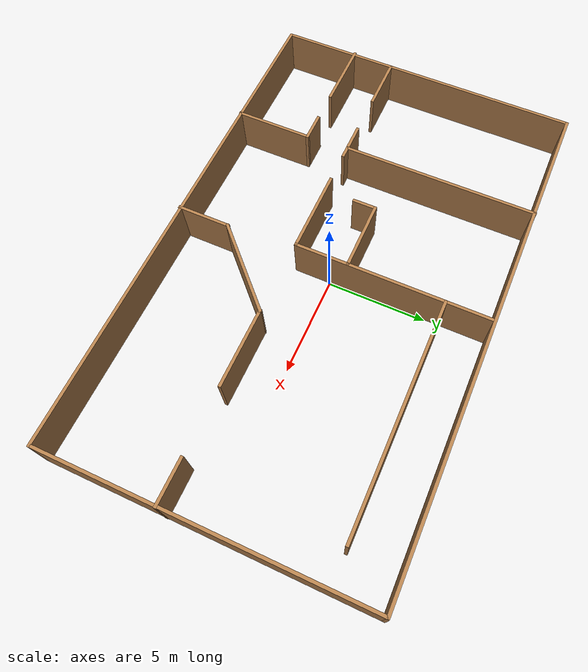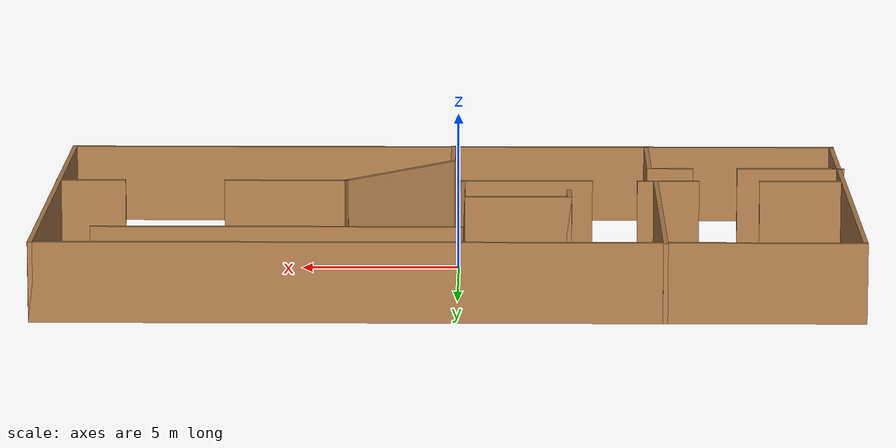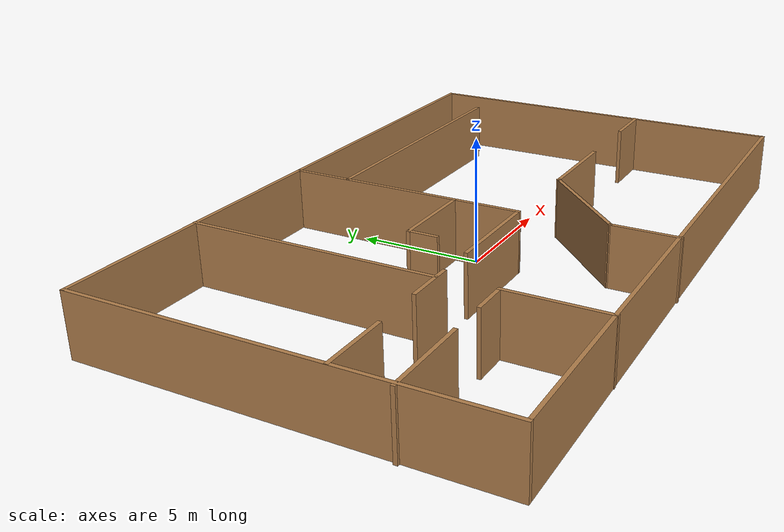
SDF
<?xml version='1.0'?>
<sdf version='1.7'>
  <model name='environment_model'>
    <pose>0.237927 0.116467 0 0 -0 0</pose>
    <link name='Wall_107'>
      <collision name='Wall_107_Collision'>
        <geometry>
          <box>
            <size>16 0.15 2.5</size>
          </box>
        </geometry>
        <pose>0 0 1.25 0 -0 0</pose>
      </collision>
      <visual name='Wall_107_Visual'>
        <pose>0 0 1.25 0 -0 0</pose>
        <geometry>
          <box>
            <size>16 0.15 2.5</size>
          </box>
        </geometry>
        <material>
          <script>
            <uri>file://media/materials/scripts/gazebo.material</uri>
            <name>Gazebo/Wood</name>
          </script>
          <ambient>1 1 1 1</ambient>
        </material>
        <meta>
          <layer>0</layer>
        </meta>
      </visual>
      <pose>-12.6349 0.013322 0 0 -0 1.5708</pose>
    </link>
    <link name='Wall_108'>
      <collision name='Wall_108_Collision'>
        <geometry>
          <box>
            <size>25.5 0.15 2.5</size>
          </box>
        </geometry>
        <pose>0 0 1.25 0 -0 0</pose>
      </collision>
      <visual name='Wall_108_Visual'>
        <pose>0 0 1.25 0 -0 0</pose>
        <geometry>
          <box>
            <size>25.5 0.15 2.5</size>
          </box>
        </geometry>
        <material>
          <script>
            <uri>file://media/materials/scripts/gazebo.material</uri>
            <name>Gazebo/Wood</name>
          </script>
          <ambient>1 1 1 1</ambient>
        </material>
        <meta>
          <layer>0</layer>
        </meta>
      </visual>
      <pose>0.040146 7.93832 0 0 -0 0</pose>
    </link>
    <link name='Wall_109'>
      <collision name='Wall_109_Collision'>
        <geometry>
          <box>
            <size>16 0.15 2.5</size>
          </box>
        </geometry>
        <pose>0 0 1.25 0 -0 0</pose>
      </collision>
      <visual name='Wall_109_Visual'>
        <pose>0 0 1.25 0 -0 0</pose>
        <geometry>
          <box>
            <size>16 0.15 2.5</size>
          </box>
        </geometry>
        <material>
          <script>
            <uri>file://media/materials/scripts/gazebo.material</uri>
            <name>Gazebo/Wood</name>
          </script>
          <ambient>1 1 1 1</ambient>
        </material>
        <meta>
          <layer>0</layer>
        </meta>
      </visual>
      <pose>12.7151 0.013322 0 0 -0 -1.5708</pose>
    </link>
    <link name='Wall_110'>
      <collision name='Wall_110_Collision'>
        <geometry>
          <box>
            <size>25.5 0.15 2.5</size>
          </box>
        </geometry>
        <pose>0 0 1.25 0 -0 0</pose>
      </collision>
      <visual name='Wall_110_Visual'>
        <pose>0 0 1.25 0 -0 0</pose>
        <geometry>
          <box>
            <size>25.5 0.15 2.5</size>
          </box>
        </geometry>
        <material>
          <script>
            <uri>file://media/materials/scripts/gazebo.material</uri>
            <name>Gazebo/Wood</name>
          </script>
          <ambient>1 1 1 1</ambient>
        </material>
        <meta>
          <layer>0</layer>
        </meta>
      </visual>
      <pose>0.040146 -7.91168 0 0 -0 3.14159</pose>
    </link>
    <link name='Wall_112'>
      <collision name='Wall_112_Collision'>
        <geometry>
          <box>
            <size>2.75 0.15 2.5</size>
          </box>
        </geometry>
        <pose>0 0 1.25 0 -0 0</pose>
      </collision>
      <visual name='Wall_112_Visual'>
        <pose>0 0 1.25 0 -0 0</pose>
        <geometry>
          <box>
            <size>2.75 0.15 2.5</size>
          </box>
        </geometry>
        <material>
          <script>
            <uri>file://media/materials/scripts/gazebo.material</uri>
            <name>Gazebo/Wood</name>
          </script>
          <ambient>1 1 1 1</ambient>
        </material>
        <meta>
          <layer>0</layer>
        </meta>
      </visual>
      <pose>-11.3056 -1.91173 0 0 -0 0</pose>
    </link>
    <link name='Wall_114'>
      <collision name='Wall_114_Collision'>
        <geometry>
          <box>
            <size>2 0.15 2.5</size>
          </box>
        </geometry>
        <pose>0 0 1.25 0 -0 0</pose>
      </collision>
      <visual name='Wall_114_Visual'>
        <pose>0 0 1.25 0 -0 0</pose>
        <geometry>
          <box>
            <size>2 0.15 2.5</size>
          </box>
        </geometry>
        <material>
          <script>
            <uri>file://media/materials/scripts/gazebo.material</uri>
            <name>Gazebo/Wood</name>
          </script>
          <ambient>1 1 1 1</ambient>
        </material>
        <meta>
          <layer>0</layer>
        </meta>
      </visual>
      <pose>-6.9806 -1.91173 0 0 -0 0</pose>
    </link>
    <link name='Wall_116'>
      <collision name='Wall_116_Collision'>
        <geometry>
          <box>
            <size>4.25 0.15 2.5</size>
          </box>
        </geometry>
        <pose>0 0 1.25 0 -0 0</pose>
      </collision>
      <visual name='Wall_116_Visual'>
        <pose>0 0 1.25 0 -0 0</pose>
        <geometry>
          <box>
            <size>4.25 0.15 2.5</size>
          </box>
        </geometry>
        <material>
          <script>
            <uri>file://media/materials/scripts/gazebo.material</uri>
            <name>Gazebo/Wood</name>
          </script>
          <ambient>1 1 1 1</ambient>
        </material>
        <meta>
          <layer>0</layer>
        </meta>
      </visual>
      <pose>-2.4056 -1.91173 0 0 -0 0</pose>
    </link>
    <link name='Wall_117'>
      <collision name='Wall_117_Collision'>
        <geometry>
          <box>
            <size>10 0.15 2.5</size>
          </box>
        </geometry>
        <pose>0 0 1.25 0 -0 0</pose>
      </collision>
      <visual name='Wall_117_Visual'>
        <pose>0 0 1.25 0 -0 0</pose>
        <geometry>
          <box>
            <size>10 0.15 2.5</size>
          </box>
        </geometry>
        <material>
          <script>
            <uri>file://media/materials/scripts/gazebo.material</uri>
            <name>Gazebo/Wood</name>
          </script>
          <ambient>1 1 1 1</ambient>
        </material>
        <meta>
          <layer>0</layer>
        </meta>
      </visual>
      <pose>-0.355599 3.01327 0 0 -0 1.5708</pose>
    </link>
    <link name='Wall_119'>
      <collision name='Wall_119_Collision'>
        <geometry>
          <box>
            <size>10 0.15 2.5</size>
          </box>
        </geometry>
        <pose>0 0 1.25 0 -0 0</pose>
      </collision>
      <visual name='Wall_119_Visual'>
        <pose>0 0 1.25 0 -0 0</pose>
        <geometry>
          <box>
            <size>10 0.15 2.5</size>
          </box>
        </geometry>
        <material>
          <script>
            <uri>file://media/materials/scripts/gazebo.material</uri>
            <name>Gazebo/Wood</name>
          </script>
          <ambient>1 1 1 1</ambient>
        </material>
        <meta>
          <layer>0</layer>
        </meta>
      </visual>
      <pose>-6.57906 3.04252 0 0 -0 1.5708</pose>
    </link>
    <link name='Wall_121'>
      <collision name='Wall_121_Collision'>
        <geometry>
          <box>
            <size>3.5 0.15 2.5</size>
          </box>
        </geometry>
        <pose>0 0 1.25 0 -0 0</pose>
      </collision>
      <visual name='Wall_121_Visual'>
        <pose>0 0 1.25 0 -0 0</pose>
        <geometry>
          <box>
            <size>3.5 0.15 2.5</size>
          </box>
        </geometry>
        <material>
          <script>
            <uri>file://media/materials/scripts/gazebo.material</uri>
            <name>Gazebo/Wood</name>
          </script>
          <ambient>1 1 1 1</ambient>
        </material>
        <meta>
          <layer>0</layer>
        </meta>
      </visual>
      <pose>-2.08125 0.750476 0 0 -0 3.14159</pose>
    </link>
    <link name='Wall_122'>
      <collision name='Wall_122_Collision'>
        <geometry>
          <box>
            <size>1.25 0.15 2.5</size>
          </box>
        </geometry>
        <pose>0 0 1.25 0 -0 0</pose>
      </collision>
      <visual name='Wall_122_Visual'>
        <pose>0 0 1.25 0 -0 0</pose>
        <geometry>
          <box>
            <size>1.25 0.15 2.5</size>
          </box>
        </geometry>
        <material>
          <script>
            <uri>file://media/materials/scripts/gazebo.material</uri>
            <name>Gazebo/Wood</name>
          </script>
          <ambient>1 1 1 1</ambient>
        </material>
        <meta>
          <layer>0</layer>
        </meta>
      </visual>
      <pose>-3.75625 0.200476 0 0 -0 -1.5708</pose>
    </link>
    <link name='Wall_124'>
      <collision name='Wall_124_Collision'>
        <geometry>
          <box>
            <size>4 0.15 2.5</size>
          </box>
        </geometry>
        <pose>0 0 1.25 0 -0 0</pose>
      </collision>
      <visual name='Wall_124_Visual'>
        <pose>0 0 1.25 0 -0 0</pose>
        <geometry>
          <box>
            <size>4 0.15 2.5</size>
          </box>
        </geometry>
        <material>
          <script>
            <uri>file://media/materials/scripts/gazebo.material</uri>
            <name>Gazebo/Wood</name>
          </script>
          <ambient>1 1 1 1</ambient>
        </material>
        <meta>
          <layer>0</layer>
        </meta>
      </visual>
      <pose>-6.43279 -6.01327 0 0 -0 1.5708</pose>
    </link>
    <link name='Wall_125'>
      <collision name='Wall_125_Collision'>
        <geometry>
          <box>
            <size>1.5 0.15 2.5</size>
          </box>
        </geometry>
        <pose>0 0 1.25 0 -0 0</pose>
      </collision>
      <visual name='Wall_125_Visual'>
        <pose>0 0 1.25 0 -0 0</pose>
        <geometry>
          <box>
            <size>1.5 0.15 2.5</size>
          </box>
        </geometry>
        <material>
          <script>
            <uri>file://media/materials/scripts/gazebo.material</uri>
            <name>Gazebo/Wood</name>
          </script>
          <ambient>1 1 1 1</ambient>
        </material>
        <meta>
          <layer>0</layer>
        </meta>
      </visual>
      <pose>-7.10779 -4.08827 0 0 -0 3.14159</pose>
    </link>
    <link name='Wall_127'>
      <collision name='Wall_127_Collision'>
        <geometry>
          <box>
            <size>3.5 0.15 2.5</size>
          </box>
        </geometry>
        <pose>0 0 1.25 0 -0 0</pose>
      </collision>
      <visual name='Wall_127_Visual'>
        <pose>0 0 1.25 0 -0 0</pose>
        <geometry>
          <box>
            <size>3.5 0.15 2.5</size>
          </box>
        </geometry>
        <material>
          <script>
            <uri>file://media/materials/scripts/gazebo.material</uri>
            <name>Gazebo/Wood</name>
          </script>
          <ambient>1 1 1 1</ambient>
        </material>
        <meta>
          <layer>0</layer>
        </meta>
      </visual>
      <pose>-11.0578 -4.08827 0 0 -0 3.14159</pose>
    </link>
    <link name='Wall_129'>
      <collision name='Wall_129_Collision'>
        <geometry>
          <box>
            <size>2.75 0.15 2.5</size>
          </box>
        </geometry>
        <pose>0 0 1.25 0 -0 0</pose>
      </collision>
      <visual name='Wall_129_Visual'>
        <pose>0 0 1.25 0 -0 0</pose>
        <geometry>
          <box>
            <size>2.75 0.15 2.5</size>
          </box>
        </geometry>
        <material>
          <script>
            <uri>file://media/materials/scripts/gazebo.material</uri>
            <name>Gazebo/Wood</name>
          </script>
          <ambient>1 1 1 1</ambient>
        </material>
        <meta>
          <layer>0</layer>
        </meta>
      </visual>
      <pose>0.00332 -6.66752 0 0 -0 1.5708</pose>
    </link>
    <link name='Wall_130'>
      <collision name='Wall_130_Collision'>
        <geometry>
          <box>
            <size>5 0.15 2.5</size>
          </box>
        </geometry>
        <pose>0 0 1.25 0 -0 0</pose>
      </collision>
      <visual name='Wall_130_Visual'>
        <pose>0 0 1.25 0 -0 0</pose>
        <geometry>
          <box>
            <size>5 0.15 2.5</size>
          </box>
        </geometry>
        <material>
          <script>
            <uri>file://media/materials/scripts/gazebo.material</uri>
            <name>Gazebo/Wood</name>
          </script>
          <ambient>1 1 1 1</ambient>
        </material>
        <meta>
          <layer>0</layer>
        </meta>
      </visual>
      <pose>1.71805 -3.65279 0 0 -0 0.785398</pose>
    </link>
    <link name='Wall_131'>
      <collision name='Wall_131_Collision'>
        <geometry>
          <box>
            <size>4 0.15 2.5</size>
          </box>
        </geometry>
        <pose>0 0 1.25 0 -0 0</pose>
      </collision>
      <visual name='Wall_131_Visual'>
        <pose>0 0 1.25 0 -0 0</pose>
        <geometry>
          <box>
            <size>4 0.15 2.5</size>
          </box>
        </geometry>
        <material>
          <script>
            <uri>file://media/materials/scripts/gazebo.material</uri>
            <name>Gazebo/Wood</name>
          </script>
          <ambient>1 1 1 1</ambient>
        </material>
        <meta>
          <layer>0</layer>
        </meta>
      </visual>
      <pose>5.35779 -1.93806 0 0 -0 0</pose>
    </link>
    <link name='Wall_133'>
      <collision name='Wall_133_Collision'>
        <geometry>
          <box>
            <size>2.25 0.15 2.5</size>
          </box>
        </geometry>
        <pose>0 0 1.25 0 -0 0</pose>
      </collision>
      <visual name='Wall_133_Visual'>
        <pose>0 0 1.25 0 -0 0</pose>
        <geometry>
          <box>
            <size>2.25 0.15 2.5</size>
          </box>
        </geometry>
        <material>
          <script>
            <uri>file://media/materials/scripts/gazebo.material</uri>
            <name>Gazebo/Wood</name>
          </script>
          <ambient>1 1 1 1</ambient>
        </material>
        <meta>
          <layer>0</layer>
        </meta>
      </visual>
      <pose>11.6828 -1.93806 0 0 -0 0</pose>
    </link>
    <link name='Wall_135'>
      <collision name='Wall_135_Collision'>
        <geometry>
          <box>
            <size>11.5 0.15 2.5</size>
          </box>
        </geometry>
        <pose>0 0 1.25 0 -0 0</pose>
      </collision>
      <visual name='Wall_135_Visual'>
        <pose>0 0 1.25 0 -0 0</pose>
        <geometry>
          <box>
            <size>11.5 0.15 2.5</size>
          </box>
        </geometry>
        <material>
          <script>
            <uri>file://media/materials/scripts/gazebo.material</uri>
            <name>Gazebo/Wood</name>
          </script>
          <ambient>1 1 1 1</ambient>
        </material>
        <meta>
          <layer>0</layer>
        </meta>
      </visual>
      <pose>5.32726 5.57756 0 0 -0 0</pose>
    </link>
    <static>1</static>
  </model>
</sdf>
